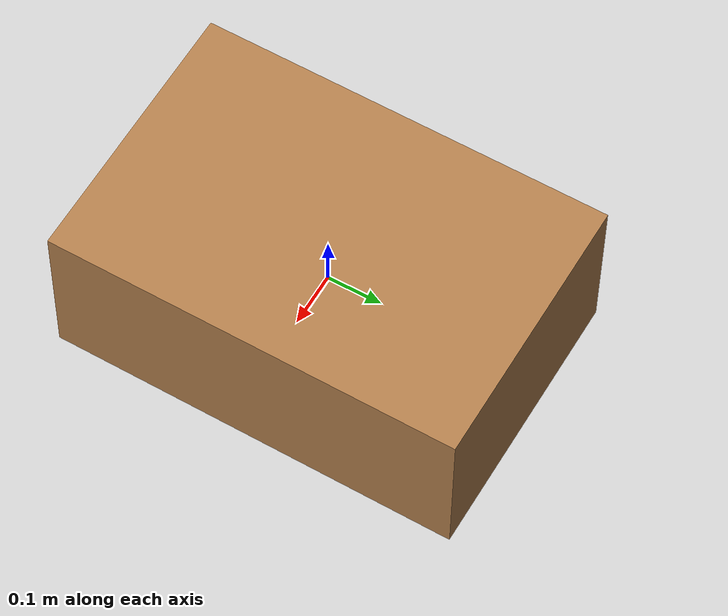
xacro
<?xml version="1.0"?>
<robot name="target_box" xmlns:xacro="http://www.ros.org/wiki/xacro">

<link name="target_box_link">
    <inertial>
      <origin xyz="0 0 0" />
      <mass value="0.032619775739"/>
      <inertia ixx="0.00117567061366" ixy="0.0" ixz="0.0" iyy="0.00117567061366" iyz="0.0" izz="5.43662711519e-05"/>
    </inertial>

    <visual>
      <origin xyz="0 0 0"/>
      <geometry>
         <box size="0.5 0.75 0.3"/>
      </geometry>
    </visual>

    <collision>
      <origin xyz="0 0 0"/>
      <geometry>
         <box size="0.5 0.75 0.3"/>
      </geometry>
    </collision>
</link>

  <gazebo reference="target_box_link">
    <material>Gazebo/WoodPallet</material>
    <mu1>1.0</mu1>
    <mu2>1.0</mu2>
    <static>0</static>
  </gazebo>

<!--................. Gazebo plugins....................-->
  <gazebo>
	<plugin name="gazebo_ros_control" filename="libgazebo_ros_control.so">
	    <robotNamespace>/ram</robotNamespace>
	</plugin>
  </gazebo>
</robot>
